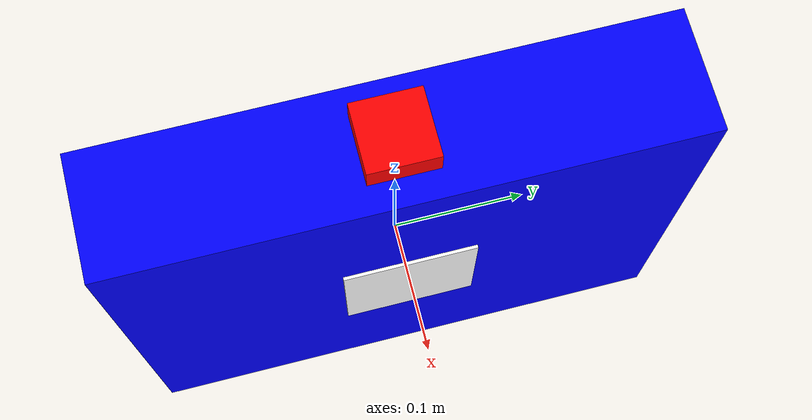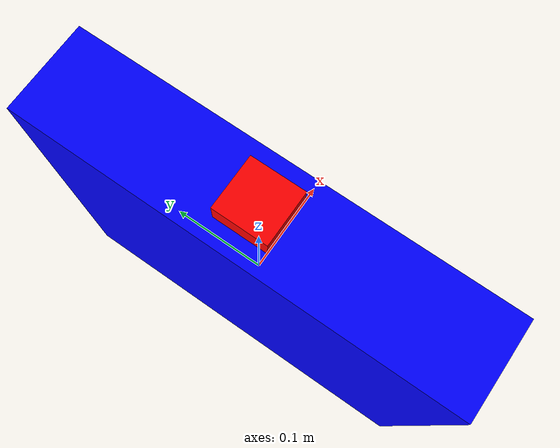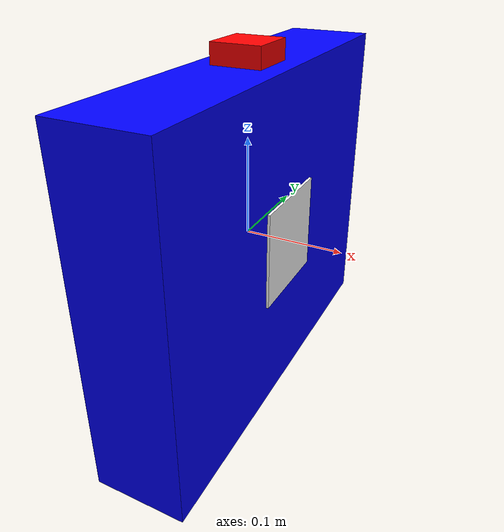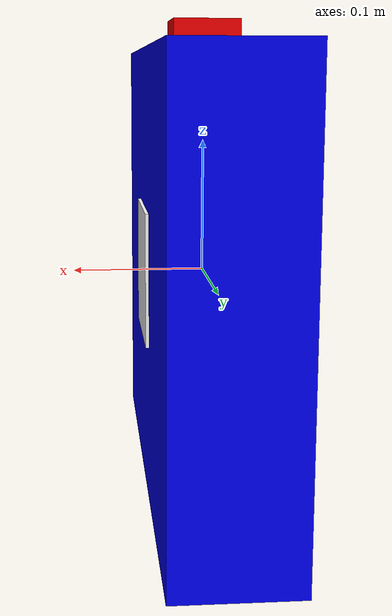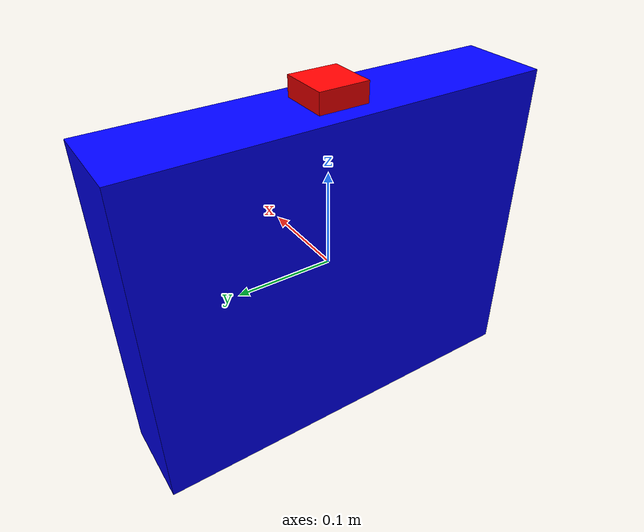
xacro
<?xml version="1.0"?>
<robot xmlns:xacro="http://www.ros.org/wiki/xacro" name="the_final_boss">

  <!-- ROBOT BASE DEFINITION (OUR STARTING POINT) -->

  <link name="base_link">
    <visual>
      <geometry>
        <box size="0.09 0.42 0.34"/>  <!-- Your robot dimensions -->
      </geometry>
      <material name="blue">
        <color rgba="0.0 0.0 1.0 1.0"/>
      </material>
    </visual>
    <collision>
      <geometry>
        <box size="0.3 0.2 0.1"/>
      </geometry>
    </collision>
    <inertial>
      <mass value="1.0"/>
      <inertia ixx="0.01" ixy="0.0" ixz="0.0" iyy="0.01" iyz="0.0" izz="0.01"/>
    </inertial>
  </link>

  <!-- IMU ON TOP (UPSIDE DOWN) -->

  <link name="imu_link">
    <visual>
      <geometry>
        <box size="0.05 0.05 0.02"/>
      </geometry>
      <material name="red">
        <color rgba="1.0 0.0 0.0 1.0"/>
      </material>
    </visual>
  </link>

  <joint name="base_to_imu" type="fixed">
    <parent link="base_link"/>
    <child link="imu_link"/>
    <origin xyz="0.0 0.0 0.18" rpy="3.141592 0 0"/>
  </joint>

  <!-- APRILTAG RELATIVE TO ROBOT BASE -->

  <link name="Apriltag">
    <visual>
      <geometry>
        <box size="0.1 0.1 0.005"/>
      </geometry>
      <material name="white">
        <color rgba="1.0 1.0 1.0 1.0"/>
      </material>
    </visual>
  </link>

  <joint name="base_to_apriltag" type="fixed">
    <parent link="base_link"/>
    <child link="Apriltag"/>
    <origin xyz="0.045 0 0.0" rpy="1.5708 0 1.5708"/>
  </joint>

</robot>
